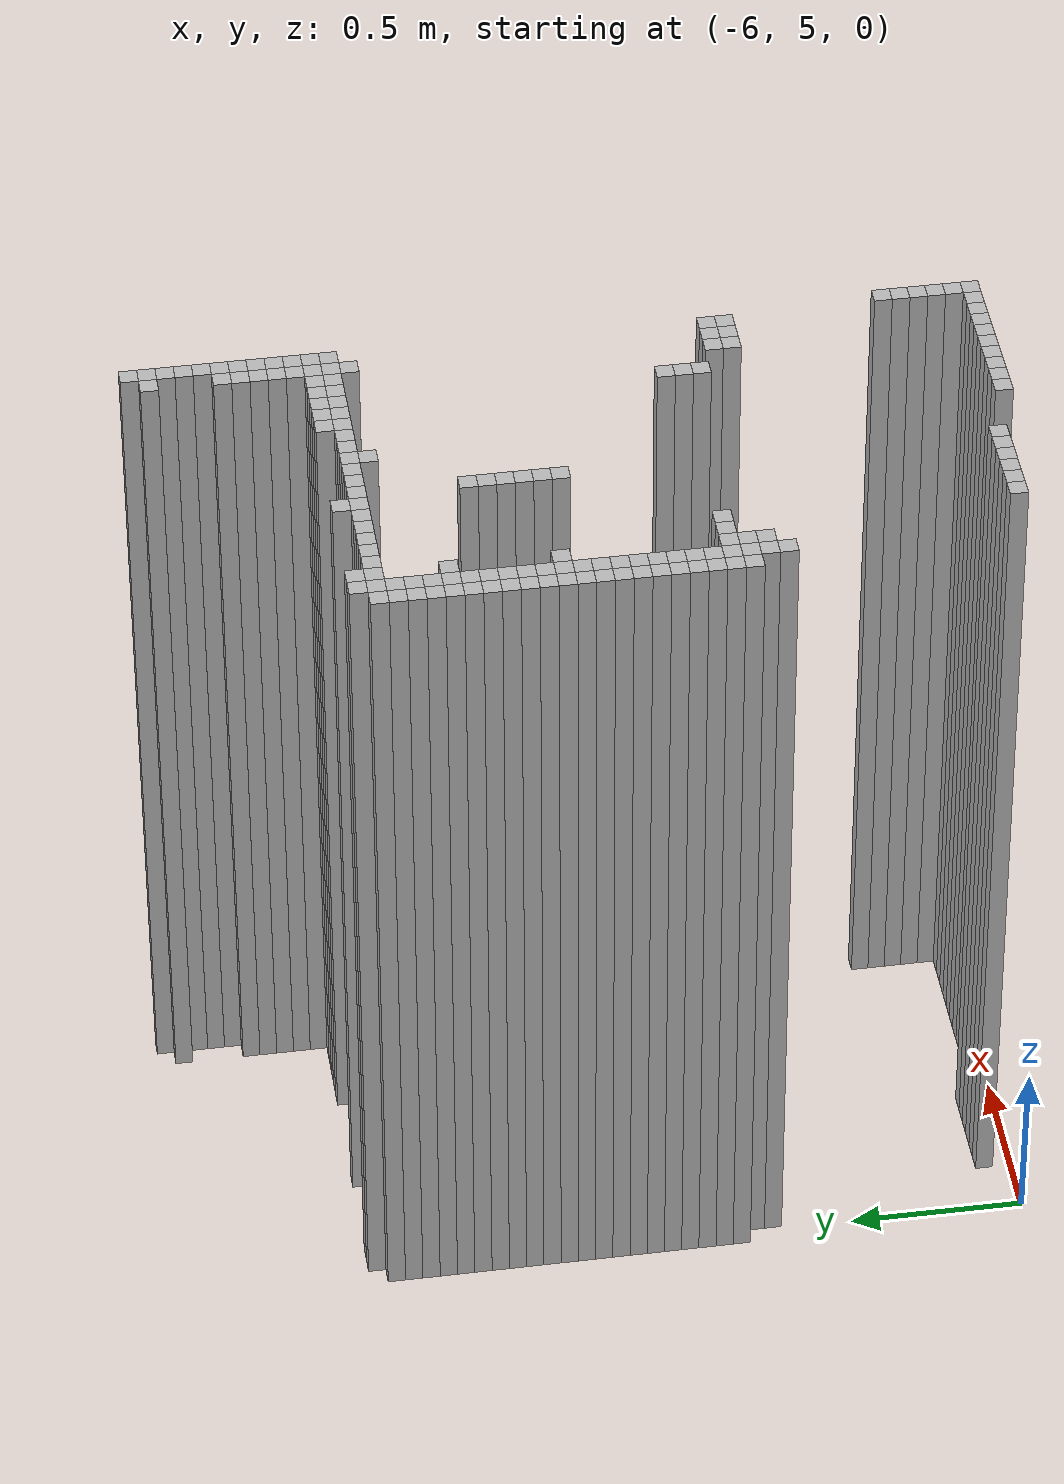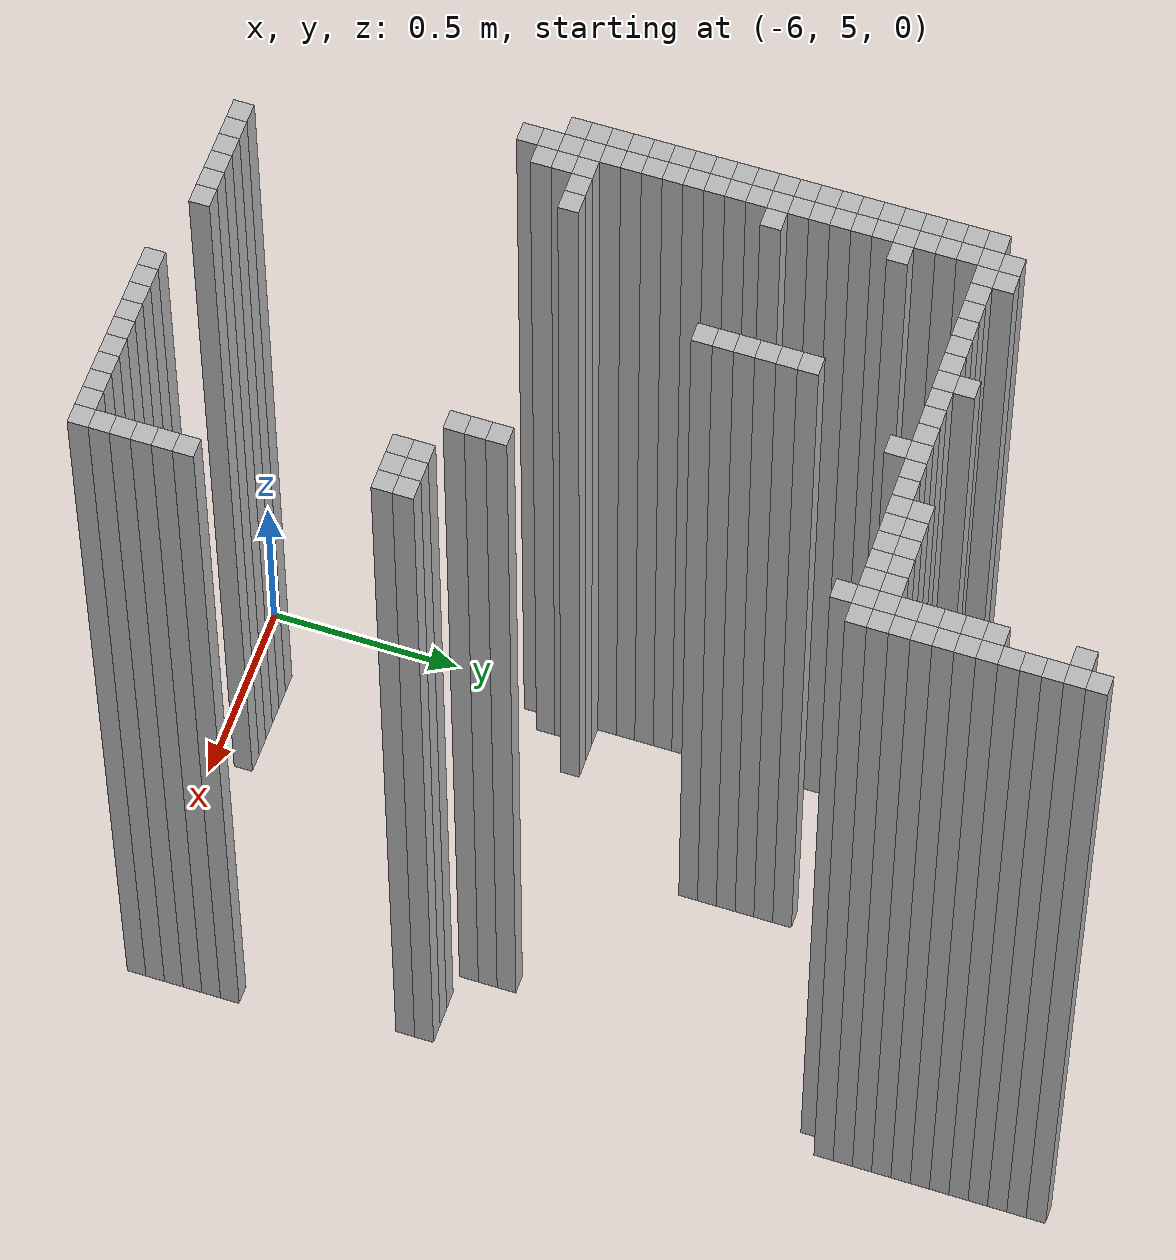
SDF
<sdf version="1.9">
 <world name="map_world">
  <model name="wall_124_6">
   <static>true</static>
   <pose>-4.961 7.380 1.250 0 0 0</pose>
   <link name="link">
    <collision name="collision"><geometry><box><size>0.050 0.050 2.500</size></box></geometry></collision>
    <visual name="visual"><geometry><box><size>0.050 0.050 2.500</size></box></geometry></visual>
   </link>
  </model>
  <model name="wall_123_7">
   <static>true</static>
   <pose>-5.011 7.330 1.250 0 0 0</pose>
   <link name="link">
    <collision name="collision"><geometry><box><size>0.050 0.050 2.500</size></box></geometry></collision>
    <visual name="visual"><geometry><box><size>0.050 0.050 2.500</size></box></geometry></visual>
   </link>
  </model>
  <model name="wall_124_7">
   <static>true</static>
   <pose>-4.961 7.330 1.250 0 0 0</pose>
   <link name="link">
    <collision name="collision"><geometry><box><size>0.050 0.050 2.500</size></box></geometry></collision>
    <visual name="visual"><geometry><box><size>0.050 0.050 2.500</size></box></geometry></visual>
   </link>
  </model>
  <model name="wall_124_8">
   <static>true</static>
   <pose>-4.961 7.280 1.250 0 0 0</pose>
   <link name="link">
    <collision name="collision"><geometry><box><size>0.050 0.050 2.500</size></box></geometry></collision>
    <visual name="visual"><geometry><box><size>0.050 0.050 2.500</size></box></geometry></visual>
   </link>
  </model>
  <model name="wall_124_9">
   <static>true</static>
   <pose>-4.961 7.230 1.250 0 0 0</pose>
   <link name="link">
    <collision name="collision"><geometry><box><size>0.050 0.050 2.500</size></box></geometry></collision>
    <visual name="visual"><geometry><box><size>0.050 0.050 2.500</size></box></geometry></visual>
   </link>
  </model>
  <model name="wall_124_10">
   <static>true</static>
   <pose>-4.961 7.180 1.250 0 0 0</pose>
   <link name="link">
    <collision name="collision"><geometry><box><size>0.050 0.050 2.500</size></box></geometry></collision>
    <visual name="visual"><geometry><box><size>0.050 0.050 2.500</size></box></geometry></visual>
   </link>
  </model>
  <model name="wall_123_11">
   <static>true</static>
   <pose>-5.011 7.130 1.250 0 0 0</pose>
   <link name="link">
    <collision name="collision"><geometry><box><size>0.050 0.050 2.500</size></box></geometry></collision>
    <visual name="visual"><geometry><box><size>0.050 0.050 2.500</size></box></geometry></visual>
   </link>
  </model>
  <model name="wall_124_11">
   <static>true</static>
   <pose>-4.961 7.130 1.250 0 0 0</pose>
   <link name="link">
    <collision name="collision"><geometry><box><size>0.050 0.050 2.500</size></box></geometry></collision>
    <visual name="visual"><geometry><box><size>0.050 0.050 2.500</size></box></geometry></visual>
   </link>
  </model>
  <model name="wall_123_12">
   <static>true</static>
   <pose>-5.011 7.080 1.250 0 0 0</pose>
   <link name="link">
    <collision name="collision"><geometry><box><size>0.050 0.050 2.500</size></box></geometry></collision>
    <visual name="visual"><geometry><box><size>0.050 0.050 2.500</size></box></geometry></visual>
   </link>
  </model>
  <model name="wall_124_12">
   <static>true</static>
   <pose>-4.961 7.080 1.250 0 0 0</pose>
   <link name="link">
    <collision name="collision"><geometry><box><size>0.050 0.050 2.500</size></box></geometry></collision>
    <visual name="visual"><geometry><box><size>0.050 0.050 2.500</size></box></geometry></visual>
   </link>
  </model>
  <model name="wall_123_13">
   <static>true</static>
   <pose>-5.011 7.030 1.250 0 0 0</pose>
   <link name="link">
    <collision name="collision"><geometry><box><size>0.050 0.050 2.500</size></box></geometry></collision>
    <visual name="visual"><geometry><box><size>0.050 0.050 2.500</size></box></geometry></visual>
   </link>
  </model>
  <model name="wall_124_13">
   <static>true</static>
   <pose>-4.961 7.030 1.250 0 0 0</pose>
   <link name="link">
    <collision name="collision"><geometry><box><size>0.050 0.050 2.500</size></box></geometry></collision>
    <visual name="visual"><geometry><box><size>0.050 0.050 2.500</size></box></geometry></visual>
   </link>
  </model>
  <model name="wall_123_14">
   <static>true</static>
   <pose>-5.011 6.980 1.250 0 0 0</pose>
   <link name="link">
    <collision name="collision"><geometry><box><size>0.050 0.050 2.500</size></box></geometry></collision>
    <visual name="visual"><geometry><box><size>0.050 0.050 2.500</size></box></geometry></visual>
   </link>
  </model>
  <model name="wall_124_14">
   <static>true</static>
   <pose>-4.961 6.980 1.250 0 0 0</pose>
   <link name="link">
    <collision name="collision"><geometry><box><size>0.050 0.050 2.500</size></box></geometry></collision>
    <visual name="visual"><geometry><box><size>0.050 0.050 2.500</size></box></geometry></visual>
   </link>
  </model>
  <model name="wall_123_15">
   <static>true</static>
   <pose>-5.011 6.930 1.250 0 0 0</pose>
   <link name="link">
    <collision name="collision"><geometry><box><size>0.050 0.050 2.500</size></box></geometry></collision>
    <visual name="visual"><geometry><box><size>0.050 0.050 2.500</size></box></geometry></visual>
   </link>
  </model>
  <model name="wall_124_15">
   <static>true</static>
   <pose>-4.961 6.930 1.250 0 0 0</pose>
   <link name="link">
    <collision name="collision"><geometry><box><size>0.050 0.050 2.500</size></box></geometry></collision>
    <visual name="visual"><geometry><box><size>0.050 0.050 2.500</size></box></geometry></visual>
   </link>
  </model>
  <model name="wall_104_16">
   <static>true</static>
   <pose>-5.961 6.880 1.250 0 0 0</pose>
   <link name="link">
    <collision name="collision"><geometry><box><size>0.050 0.050 2.500</size></box></geometry></collision>
    <visual name="visual"><geometry><box><size>0.050 0.050 2.500</size></box></geometry></visual>
   </link>
  </model>
  <model name="wall_105_16">
   <static>true</static>
   <pose>-5.911 6.880 1.250 0 0 0</pose>
   <link name="link">
    <collision name="collision"><geometry><box><size>0.050 0.050 2.500</size></box></geometry></collision>
    <visual name="visual"><geometry><box><size>0.050 0.050 2.500</size></box></geometry></visual>
   </link>
  </model>
  <model name="wall_111_16">
   <static>true</static>
   <pose>-5.611 6.880 1.250 0 0 0</pose>
   <link name="link">
    <collision name="collision"><geometry><box><size>0.050 0.050 2.500</size></box></geometry></collision>
    <visual name="visual"><geometry><box><size>0.050 0.050 2.500</size></box></geometry></visual>
   </link>
  </model>
  <model name="wall_118_16">
   <static>true</static>
   <pose>-5.261 6.880 1.250 0 0 0</pose>
   <link name="link">
    <collision name="collision"><geometry><box><size>0.050 0.050 2.500</size></box></geometry></collision>
    <visual name="visual"><geometry><box><size>0.050 0.050 2.500</size></box></geometry></visual>
   </link>
  </model>
  <model name="wall_119_16">
   <static>true</static>
   <pose>-5.211 6.880 1.250 0 0 0</pose>
   <link name="link">
    <collision name="collision"><geometry><box><size>0.050 0.050 2.500</size></box></geometry></collision>
    <visual name="visual"><geometry><box><size>0.050 0.050 2.500</size></box></geometry></visual>
   </link>
  </model>
  <model name="wall_120_16">
   <static>true</static>
   <pose>-5.161 6.880 1.250 0 0 0</pose>
   <link name="link">
    <collision name="collision"><geometry><box><size>0.050 0.050 2.500</size></box></geometry></collision>
    <visual name="visual"><geometry><box><size>0.050 0.050 2.500</size></box></geometry></visual>
   </link>
  </model>
  <model name="wall_121_16">
   <static>true</static>
   <pose>-5.111 6.880 1.250 0 0 0</pose>
   <link name="link">
    <collision name="collision"><geometry><box><size>0.050 0.050 2.500</size></box></geometry></collision>
    <visual name="visual"><geometry><box><size>0.050 0.050 2.500</size></box></geometry></visual>
   </link>
  </model>
  <model name="wall_122_16">
   <static>true</static>
   <pose>-5.061 6.880 1.250 0 0 0</pose>
   <link name="link">
    <collision name="collision"><geometry><box><size>0.050 0.050 2.500</size></box></geometry></collision>
    <visual name="visual"><geometry><box><size>0.050 0.050 2.500</size></box></geometry></visual>
   </link>
  </model>
  <model name="wall_123_16">
   <static>true</static>
   <pose>-5.011 6.880 1.250 0 0 0</pose>
   <link name="link">
    <collision name="collision"><geometry><box><size>0.050 0.050 2.500</size></box></geometry></collision>
    <visual name="visual"><geometry><box><size>0.050 0.050 2.500</size></box></geometry></visual>
   </link>
  </model>
  <model name="wall_124_16">
   <static>true</static>
   <pose>-4.961 6.880 1.250 0 0 0</pose>
   <link name="link">
    <collision name="collision"><geometry><box><size>0.050 0.050 2.500</size></box></geometry></collision>
    <visual name="visual"><geometry><box><size>0.050 0.050 2.500</size></box></geometry></visual>
   </link>
  </model>
  <model name="wall_103_17">
   <static>true</static>
   <pose>-6.011 6.830 1.250 0 0 0</pose>
   <link name="link">
    <collision name="collision"><geometry><box><size>0.050 0.050 2.500</size></box></geometry></collision>
    <visual name="visual"><geometry><box><size>0.050 0.050 2.500</size></box></geometry></visual>
   </link>
  </model>
  <model name="wall_104_17">
   <static>true</static>
   <pose>-5.961 6.830 1.250 0 0 0</pose>
   <link name="link">
    <collision name="collision"><geometry><box><size>0.050 0.050 2.500</size></box></geometry></collision>
    <visual name="visual"><geometry><box><size>0.050 0.050 2.500</size></box></geometry></visual>
   </link>
  </model>
  <model name="wall_105_17">
   <static>true</static>
   <pose>-5.911 6.830 1.250 0 0 0</pose>
   <link name="link">
    <collision name="collision"><geometry><box><size>0.050 0.050 2.500</size></box></geometry></collision>
    <visual name="visual"><geometry><box><size>0.050 0.050 2.500</size></box></geometry></visual>
   </link>
  </model>
  <model name="wall_106_17">
   <static>true</static>
   <pose>-5.861 6.830 1.250 0 0 0</pose>
   <link name="link">
    <collision name="collision"><geometry><box><size>0.050 0.050 2.500</size></box></geometry></collision>
    <visual name="visual"><geometry><box><size>0.050 0.050 2.500</size></box></geometry></visual>
   </link>
  </model>
  <model name="wall_107_17">
   <static>true</static>
   <pose>-5.811 6.830 1.250 0 0 0</pose>
   <link name="link">
    <collision name="collision"><geometry><box><size>0.050 0.050 2.500</size></box></geometry></collision>
    <visual name="visual"><geometry><box><size>0.050 0.050 2.500</size></box></geometry></visual>
   </link>
  </model>
  <model name="wall_108_17">
   <static>true</static>
   <pose>-5.761 6.830 1.250 0 0 0</pose>
   <link name="link">
    <collision name="collision"><geometry><box><size>0.050 0.050 2.500</size></box></geometry></collision>
    <visual name="visual"><geometry><box><size>0.050 0.050 2.500</size></box></geometry></visual>
   </link>
  </model>
  <model name="wall_109_17">
   <static>true</static>
   <pose>-5.711 6.830 1.250 0 0 0</pose>
   <link name="link">
    <collision name="collision"><geometry><box><size>0.050 0.050 2.500</size></box></geometry></collision>
    <visual name="visual"><geometry><box><size>0.050 0.050 2.500</size></box></geometry></visual>
   </link>
  </model>
  <model name="wall_110_17">
   <static>true</static>
   <pose>-5.661 6.830 1.250 0 0 0</pose>
   <link name="link">
    <collision name="collision"><geometry><box><size>0.050 0.050 2.500</size></box></geometry></collision>
    <visual name="visual"><geometry><box><size>0.050 0.050 2.500</size></box></geometry></visual>
   </link>
  </model>
  <model name="wall_111_17">
   <static>true</static>
   <pose>-5.611 6.830 1.250 0 0 0</pose>
   <link name="link">
    <collision name="collision"><geometry><box><size>0.050 0.050 2.500</size></box></geometry></collision>
    <visual name="visual"><geometry><box><size>0.050 0.050 2.500</size></box></geometry></visual>
   </link>
  </model>
  <model name="wall_112_17">
   <static>true</static>
   <pose>-5.561 6.830 1.250 0 0 0</pose>
   <link name="link">
    <collision name="collision"><geometry><box><size>0.050 0.050 2.500</size></box></geometry></collision>
    <visual name="visual"><geometry><box><size>0.050 0.050 2.500</size></box></geometry></visual>
   </link>
  </model>
  <model name="wall_113_17">
   <static>true</static>
   <pose>-5.511 6.830 1.250 0 0 0</pose>
   <link name="link">
    <collision name="collision"><geometry><box><size>0.050 0.050 2.500</size></box></geometry></collision>
    <visual name="visual"><geometry><box><size>0.050 0.050 2.500</size></box></geometry></visual>
   </link>
  </model>
  <model name="wall_114_17">
   <static>true</static>
   <pose>-5.461 6.830 1.250 0 0 0</pose>
   <link name="link">
    <collision name="collision"><geometry><box><size>0.050 0.050 2.500</size></box></geometry></collision>
    <visual name="visual"><geometry><box><size>0.050 0.050 2.500</size></box></geometry></visual>
   </link>
  </model>
  <model name="wall_115_17">
   <static>true</static>
   <pose>-5.411 6.830 1.250 0 0 0</pose>
   <link name="link">
    <collision name="collision"><geometry><box><size>0.050 0.050 2.500</size></box></geometry></collision>
    <visual name="visual"><geometry><box><size>0.050 0.050 2.500</size></box></geometry></visual>
   </link>
  </model>
  <model name="wall_116_17">
   <static>true</static>
   <pose>-5.361 6.830 1.250 0 0 0</pose>
   <link name="link">
    <collision name="collision"><geometry><box><size>0.050 0.050 2.500</size></box></geometry></collision>
    <visual name="visual"><geometry><box><size>0.050 0.050 2.500</size></box></geometry></visual>
   </link>
  </model>
  <model name="wall_117_17">
   <static>true</static>
   <pose>-5.311 6.830 1.250 0 0 0</pose>
   <link name="link">
    <collision name="collision"><geometry><box><size>0.050 0.050 2.500</size></box></geometry></collision>
    <visual name="visual"><geometry><box><size>0.050 0.050 2.500</size></box></geometry></visual>
   </link>
  </model>
  <model name="wall_118_17">
   <static>true</static>
   <pose>-5.261 6.830 1.250 0 0 0</pose>
   <link name="link">
    <collision name="collision"><geometry><box><size>0.050 0.050 2.500</size></box></geometry></collision>
    <visual name="visual"><geometry><box><size>0.050 0.050 2.500</size></box></geometry></visual>
   </link>
  </model>
  <model name="wall_119_17">
   <static>true</static>
   <pose>-5.211 6.830 1.250 0 0 0</pose>
   <link name="link">
    <collision name="collision"><geometry><box><size>0.050 0.050 2.500</size></box></geometry></collision>
    <visual name="visual"><geometry><box><size>0.050 0.050 2.500</size></box></geometry></visual>
   </link>
  </model>
  <model name="wall_120_17">
   <static>true</static>
   <pose>-5.161 6.830 1.250 0 0 0</pose>
   <link name="link">
    <collision name="collision"><geometry><box><size>0.050 0.050 2.500</size></box></geometry></collision>
    <visual name="visual"><geometry><box><size>0.050 0.050 2.500</size></box></geometry></visual>
   </link>
  </model>
  <model name="wall_121_17">
   <static>true</static>
   <pose>-5.111 6.830 1.250 0 0 0</pose>
   <link name="link">
    <collision name="collision"><geometry><box><size>0.050 0.050 2.500</size></box></geometry></collision>
    <visual name="visual"><geometry><box><size>0.050 0.050 2.500</size></box></geometry></visual>
   </link>
  </model>
  <model name="wall_122_17">
   <static>true</static>
   <pose>-5.061 6.830 1.250 0 0 0</pose>
   <link name="link">
    <collision name="collision"><geometry><box><size>0.050 0.050 2.500</size></box></geometry></collision>
    <visual name="visual"><geometry><box><size>0.050 0.050 2.500</size></box></geometry></visual>
   </link>
  </model>
  <model name="wall_123_17">
   <static>true</static>
   <pose>-5.011 6.830 1.250 0 0 0</pose>
   <link name="link">
    <collision name="collision"><geometry><box><size>0.050 0.050 2.500</size></box></geometry></collision>
    <visual name="visual"><geometry><box><size>0.050 0.050 2.500</size></box></geometry></visual>
   </link>
  </model>
  <model name="wall_124_17">
   <static>true</static>
   <pose>-4.961 6.830 1.250 0 0 0</pose>
   <link name="link">
    <collision name="collision"><geometry><box><size>0.050 0.050 2.500</size></box></geometry></collision>
    <visual name="visual"><geometry><box><size>0.050 0.050 2.500</size></box></geometry></visual>
   </link>
  </model>
  <model name="wall_103_18">
   <static>true</static>
   <pose>-6.011 6.780 1.250 0 0 0</pose>
   <link name="link">
    <collision name="collision"><geometry><box><size>0.050 0.050 2.500</size></box></geometry></collision>
    <visual name="visual"><geometry><box><size>0.050 0.050 2.500</size></box></geometry></visual>
   </link>
  </model>
  <model name="wall_104_18">
   <static>true</static>
   <pose>-5.961 6.780 1.250 0 0 0</pose>
   <link name="link">
    <collision name="collision"><geometry><box><size>0.050 0.050 2.500</size></box></geometry></collision>
    <visual name="visual"><geometry><box><size>0.050 0.050 2.500</size></box></geometry></visual>
   </link>
  </model>
  <model name="wall_115_18">
   <static>true</static>
   <pose>-5.411 6.780 1.250 0 0 0</pose>
   <link name="link">
    <collision name="collision"><geometry><box><size>0.050 0.050 2.500</size></box></geometry></collision>
    <visual name="visual"><geometry><box><size>0.050 0.050 2.500</size></box></geometry></visual>
   </link>
  </model>
  <model name="wall_123_18">
   <static>true</static>
   <pose>-5.011 6.780 1.250 0 0 0</pose>
   <link name="link">
    <collision name="collision"><geometry><box><size>0.050 0.050 2.500</size></box></geometry></collision>
    <visual name="visual"><geometry><box><size>0.050 0.050 2.500</size></box></geometry></visual>
   </link>
  </model>
  <model name="wall_103_19">
   <static>true</static>
   <pose>-6.011 6.730 1.250 0 0 0</pose>
   <link name="link">
    <collision name="collision"><geometry><box><size>0.050 0.050 2.500</size></box></geometry></collision>
    <visual name="visual"><geometry><box><size>0.050 0.050 2.500</size></box></geometry></visual>
   </link>
  </model>
  <model name="wall_104_19">
   <static>true</static>
   <pose>-5.961 6.730 1.250 0 0 0</pose>
   <link name="link">
    <collision name="collision"><geometry><box><size>0.050 0.050 2.500</size></box></geometry></collision>
    <visual name="visual"><geometry><box><size>0.050 0.050 2.500</size></box></geometry></visual>
   </link>
  </model>
  <model name="wall_103_20">
   <static>true</static>
   <pose>-6.011 6.680 1.250 0 0 0</pose>
   <link name="link">
    <collision name="collision"><geometry><box><size>0.050 0.050 2.500</size></box></geometry></collision>
    <visual name="visual"><geometry><box><size>0.050 0.050 2.500</size></box></geometry></visual>
   </link>
  </model>
  <model name="wall_104_20">
   <static>true</static>
   <pose>-5.961 6.680 1.250 0 0 0</pose>
   <link name="link">
    <collision name="collision"><geometry><box><size>0.050 0.050 2.500</size></box></geometry></collision>
    <visual name="visual"><geometry><box><size>0.050 0.050 2.500</size></box></geometry></visual>
   </link>
  </model>
  <model name="wall_103_21">
   <static>true</static>
   <pose>-6.011 6.630 1.250 0 0 0</pose>
   <link name="link">
    <collision name="collision"><geometry><box><size>0.050 0.050 2.500</size></box></geometry></collision>
    <visual name="visual"><geometry><box><size>0.050 0.050 2.500</size></box></geometry></visual>
   </link>
  </model>
  <model name="wall_104_21">
   <static>true</static>
   <pose>-5.961 6.630 1.250 0 0 0</pose>
   <link name="link">
    <collision name="collision"><geometry><box><size>0.050 0.050 2.500</size></box></geometry></collision>
    <visual name="visual"><geometry><box><size>0.050 0.050 2.500</size></box></geometry></visual>
   </link>
  </model>
  <model name="wall_105_21">
   <static>true</static>
   <pose>-5.911 6.630 1.250 0 0 0</pose>
   <link name="link">
    <collision name="collision"><geometry><box><size>0.050 0.050 2.500</size></box></geometry></collision>
    <visual name="visual"><geometry><box><size>0.050 0.050 2.500</size></box></geometry></visual>
   </link>
  </model>
  <model name="wall_103_22">
   <static>true</static>
   <pose>-6.011 6.580 1.250 0 0 0</pose>
   <link name="link">
    <collision name="collision"><geometry><box><size>0.050 0.050 2.500</size></box></geometry></collision>
    <visual name="visual"><geometry><box><size>0.050 0.050 2.500</size></box></geometry></visual>
   </link>
  </model>
  <model name="wall_104_22">
   <static>true</static>
   <pose>-5.961 6.580 1.250 0 0 0</pose>
   <link name="link">
    <collision name="collision"><geometry><box><size>0.050 0.050 2.500</size></box></geometry></collision>
    <visual name="visual"><geometry><box><size>0.050 0.050 2.500</size></box></geometry></visual>
   </link>
  </model>
  <model name="wall_103_23">
   <static>true</static>
   <pose>-6.011 6.530 1.250 0 0 0</pose>
   <link name="link">
    <collision name="collision"><geometry><box><size>0.050 0.050 2.500</size></box></geometry></collision>
    <visual name="visual"><geometry><box><size>0.050 0.050 2.500</size></box></geometry></visual>
   </link>
  </model>
  <model name="wall_104_23">
   <static>true</static>
   <pose>-5.961 6.530 1.250 0 0 0</pose>
   <link name="link">
    <collision name="collision"><geometry><box><size>0.050 0.050 2.500</size></box></geometry></collision>
    <visual name="visual"><geometry><box><size>0.050 0.050 2.500</size></box></geometry></visual>
   </link>
  </model>
  <model name="wall_112_23">
   <static>true</static>
   <pose>-5.561 6.530 1.250 0 0 0</pose>
   <link name="link">
    <collision name="collision"><geometry><box><size>0.050 0.050 2.500</size></box></geometry></collision>
    <visual name="visual"><geometry><box><size>0.050 0.050 2.500</size></box></geometry></visual>
   </link>
  </model>
  <model name="wall_103_24">
   <static>true</static>
   <pose>-6.011 6.480 1.250 0 0 0</pose>
   <link name="link">
    <collision name="collision"><geometry><box><size>0.050 0.050 2.500</size></box></geometry></collision>
    <visual name="visual"><geometry><box><size>0.050 0.050 2.500</size></box></geometry></visual>
   </link>
  </model>
  <model name="wall_104_24">
   <static>true</static>
   <pose>-5.961 6.480 1.250 0 0 0</pose>
   <link name="link">
    <collision name="collision"><geometry><box><size>0.050 0.050 2.500</size></box></geometry></collision>
    <visual name="visual"><geometry><box><size>0.050 0.050 2.500</size></box></geometry></visual>
   </link>
  </model>
  <model name="wall_112_24">
   <static>true</static>
   <pose>-5.561 6.480 1.250 0 0 0</pose>
   <link name="link">
    <collision name="collision"><geometry><box><size>0.050 0.050 2.500</size></box></geometry></collision>
    <visual name="visual"><geometry><box><size>0.050 0.050 2.500</size></box></geometry></visual>
   </link>
  </model>
  <model name="wall_103_25">
   <static>true</static>
   <pose>-6.011 6.430 1.250 0 0 0</pose>
   <link name="link">
    <collision name="collision"><geometry><box><size>0.050 0.050 2.500</size></box></geometry></collision>
    <visual name="visual"><geometry><box><size>0.050 0.050 2.500</size></box></geometry></visual>
   </link>
  </model>
  <model name="wall_104_25">
   <static>true</static>
   <pose>-5.961 6.430 1.250 0 0 0</pose>
   <link name="link">
    <collision name="collision"><geometry><box><size>0.050 0.050 2.500</size></box></geometry></collision>
    <visual name="visual"><geometry><box><size>0.050 0.050 2.500</size></box></geometry></visual>
   </link>
  </model>
  <model name="wall_112_25">
   <static>true</static>
   <pose>-5.561 6.430 1.250 0 0 0</pose>
   <link name="link">
    <collision name="collision"><geometry><box><size>0.050 0.050 2.500</size></box></geometry></collision>
    <visual name="visual"><geometry><box><size>0.050 0.050 2.500</size></box></geometry></visual>
   </link>
  </model>
  <model name="wall_103_26">
   <static>true</static>
   <pose>-6.011 6.380 1.250 0 0 0</pose>
   <link name="link">
    <collision name="collision"><geometry><box><size>0.050 0.050 2.500</size></box></geometry></collision>
    <visual name="visual"><geometry><box><size>0.050 0.050 2.500</size></box></geometry></visual>
   </link>
  </model>
  <model name="wall_104_26">
   <static>true</static>
   <pose>-5.961 6.380 1.250 0 0 0</pose>
   <link name="link">
    <collision name="collision"><geometry><box><size>0.050 0.050 2.500</size></box></geometry></collision>
    <visual name="visual"><geometry><box><size>0.050 0.050 2.500</size></box></geometry></visual>
   </link>
  </model>
  <model name="wall_112_26">
   <static>true</static>
   <pose>-5.561 6.380 1.250 0 0 0</pose>
   <link name="link">
    <collision name="collision"><geometry><box><size>0.050 0.050 2.500</size></box></geometry></collision>
    <visual name="visual"><geometry><box><size>0.050 0.050 2.500</size></box></geometry></visual>
   </link>
  </model>
  <model name="wall_103_27">
   <static>true</static>
   <pose>-6.011 6.330 1.250 0 0 0</pose>
   <link name="link">
    <collision name="collision"><geometry><box><size>0.050 0.050 2.500</size></box></geometry></collision>
    <visual name="visual"><geometry><box><size>0.050 0.050 2.500</size></box></geometry></visual>
   </link>
  </model>
  <model name="wall_104_27">
   <static>true</static>
   <pose>-5.961 6.330 1.250 0 0 0</pose>
   <link name="link">
    <collision name="collision"><geometry><box><size>0.050 0.050 2.500</size></box></geometry></collision>
    <visual name="visual"><geometry><box><size>0.050 0.050 2.500</size></box></geometry></visual>
   </link>
  </model>
  <model name="wall_105_27">
   <static>true</static>
   <pose>-5.911 6.330 1.250 0 0 0</pose>
   <link name="link">
    <collision name="collision"><geometry><box><size>0.050 0.050 2.500</size></box></geometry></collision>
    <visual name="visual"><geometry><box><size>0.050 0.050 2.500</size></box></geometry></visual>
   </link>
  </model>
  <model name="wall_112_27">
   <static>true</static>
   <pose>-5.561 6.330 1.250 0 0 0</pose>
   <link name="link">
    <collision name="collision"><geometry><box><size>0.050 0.050 2.500</size></box></geometry></collision>
    <visual name="visual"><geometry><box><size>0.050 0.050 2.500</size></box></geometry></visual>
   </link>
  </model>
  <model name="wall_103_28">
   <static>true</static>
   <pose>-6.011 6.280 1.250 0 0 0</pose>
   <link name="link">
    <collision name="collision"><geometry><box><size>0.050 0.050 2.500</size></box></geometry></collision>
    <visual name="visual"><geometry><box><size>0.050 0.050 2.500</size></box></geometry></visual>
   </link>
  </model>
  <model name="wall_104_28">
   <static>true</static>
   <pose>-5.961 6.280 1.250 0 0 0</pose>
   <link name="link">
    <collision name="collision"><geometry><box><size>0.050 0.050 2.500</size></box></geometry></collision>
    <visual name="visual"><geometry><box><size>0.050 0.050 2.500</size></box></geometry></visual>
   </link>
  </model>
  <model name="wall_112_28">
   <static>true</static>
   <pose>-5.561 6.280 1.250 0 0 0</pose>
   <link name="link">
    <collision name="collision"><geometry><box><size>0.050 0.050 2.500</size></box></geometry></collision>
    <visual name="visual"><geometry><box><size>0.050 0.050 2.500</size></box></geometry></visual>
   </link>
  </model>
  <model name="wall_103_29">
   <static>true</static>
   <pose>-6.011 6.230 1.250 0 0 0</pose>
   <link name="link">
    <collision name="collision"><geometry><box><size>0.050 0.050 2.500</size></box></geometry></collision>
    <visual name="visual"><geometry><box><size>0.050 0.050 2.500</size></box></geometry></visual>
   </link>
  </model>
  <model name="wall_104_29">
   <static>true</static>
   <pose>-5.961 6.230 1.250 0 0 0</pose>
   <link name="link">
    <collision name="collision"><geometry><box><size>0.050 0.050 2.500</size></box></geometry></collision>
    <visual name="visual"><geometry><box><size>0.050 0.050 2.500</size></box></geometry></visual>
   </link>
  </model>
  <model name="wall_103_30">
   <static>true</static>
   <pose>-6.011 6.180 1.250 0 0 0</pose>
   <link name="link">
    <collision name="collision"><geometry><box><size>0.050 0.050 2.500</size></box></geometry></collision>
    <visual name="visual"><geometry><box><size>0.050 0.050 2.500</size></box></geometry></visual>
   </link>
  </model>
  <model name="wall_104_30">
   <static>true</static>
   <pose>-5.961 6.180 1.250 0 0 0</pose>
   <link name="link">
    <collision name="collision"><geometry><box><size>0.050 0.050 2.500</size></box></geometry></collision>
    <visual name="visual"><geometry><box><size>0.050 0.050 2.500</size></box></geometry></visual>
   </link>
  </model>
  <model name="wall_103_31">
   <static>true</static>
   <pose>-6.011 6.130 1.250 0 0 0</pose>
   <link name="link">
    <collision name="collision"><geometry><box><size>0.050 0.050 2.500</size></box></geometry></collision>
    <visual name="visual"><geometry><box><size>0.050 0.050 2.500</size></box></geometry></visual>
   </link>
  </model>
  <model name="wall_104_31">
   <static>true</static>
   <pose>-5.961 6.130 1.250 0 0 0</pose>
   <link name="link">
    <collision name="collision"><geometry><box><size>0.050 0.050 2.500</size></box></geometry></collision>
    <visual name="visual"><geometry><box><size>0.050 0.050 2.500</size></box></geometry></visual>
   </link>
  </model>
  <model name="wall_103_32">
   <static>true</static>
   <pose>-6.011 6.080 1.250 0 0 0</pose>
   <link name="link">
    <collision name="collision"><geometry><box><size>0.050 0.050 2.500</size></box></geometry></collision>
    <visual name="visual"><geometry><box><size>0.050 0.050 2.500</size></box></geometry></visual>
   </link>
  </model>
  <model name="wall_104_32">
   <static>true</static>
   <pose>-5.961 6.080 1.250 0 0 0</pose>
   <link name="link">
    <collision name="collision"><geometry><box><size>0.050 0.050 2.500</size></box></geometry></collision>
    <visual name="visual"><geometry><box><size>0.050 0.050 2.500</size></box></geometry></visual>
   </link>
  </model>
  <model name="wall_103_33">
   <static>true</static>
   <pose>-6.011 6.030 1.250 0 0 0</pose>
   <link name="link">
    <collision name="collision"><geometry><box><size>0.050 0.050 2.500</size></box></geometry></collision>
    <visual name="visual"><geometry><box><size>0.050 0.050 2.500</size></box></geometry></visual>
   </link>
  </model>
  <model name="wall_104_33">
   <static>true</static>
   <pose>-5.961 6.030 1.250 0 0 0</pose>
   <link name="link">
    <collision name="collision"><geometry><box><size>0.050 0.050 2.500</size></box></geometry></collision>
    <visual name="visual"><geometry><box><size>0.050 0.050 2.500</size></box></geometry></visual>
   </link>
  </model>
  <model name="wall_103_34">
   <static>true</static>
   <pose>-6.011 5.980 1.250 0 0 0</pose>
   <link name="link">
    <collision name="collision"><geometry><box><size>0.050 0.050 2.500</size></box></geometry></collision>
    <visual name="visual"><geometry><box><size>0.050 0.050 2.500</size></box></geometry></visual>
   </link>
  </model>
  <model name="wall_104_34">
   <static>true</static>
   <pose>-5.961 5.980 1.250 0 0 0</pose>
   <link name="link">
    <collision name="collision"><geometry><box><size>0.050 0.050 2.500</size></box></geometry></collision>
    <visual name="visual"><geometry><box><size>0.050 0.050 2.500</size></box></geometry></visual>
   </link>
  </model>
  <model name="wall_103_35">
   <static>true</static>
   <pose>-6.011 5.930 1.250 0 0 0</pose>
   <link name="link">
    <collision name="collision"><geometry><box><size>0.050 0.050 2.500</size></box></geometry></collision>
    <visual name="visual"><geometry><box><size>0.050 0.050 2.500</size></box></geometry></visual>
   </link>
  </model>
  <model name="wall_104_35">
   <static>true</static>
   <pose>-5.961 5.930 1.250 0 0 0</pose>
   <link name="link">
    <collision name="collision"><geometry><box><size>0.050 0.050 2.500</size></box></geometry></collision>
    <visual name="visual"><geometry><box><size>0.050 0.050 2.500</size></box></geometry></visual>
   </link>
  </model>
  <model name="wall_120_35">
   <static>true</static>
   <pose>-5.161 5.930 1.250 0 0 0</pose>
   <link name="link">
    <collision name="collision"><geometry><box><size>0.050 0.050 2.500</size></box></geometry></collision>
    <visual name="visual"><geometry><box><size>0.050 0.050 2.500</size></box></geometry></visual>
   </link>
  </model>
  <model name="wall_103_36">
   <static>true</static>
   <pose>-6.011 5.880 1.250 0 0 0</pose>
   <link name="link">
    <collision name="collision"><geometry><box><size>0.050 0.050 2.500</size></box></geometry></collision>
    <visual name="visual"><geometry><box><size>0.050 0.050 2.500</size></box></geometry></visual>
   </link>
  </model>
  <model name="wall_104_36">
   <static>true</static>
   <pose>-5.961 5.880 1.250 0 0 0</pose>
   <link name="link">
    <collision name="collision"><geometry><box><size>0.050 0.050 2.500</size></box></geometry></collision>
    <visual name="visual"><geometry><box><size>0.050 0.050 2.500</size></box></geometry></visual>
   </link>
  </model>
  <model name="wall_105_36">
   <static>true</static>
   <pose>-5.911 5.880 1.250 0 0 0</pose>
   <link name="link">
    <collision name="collision"><geometry><box><size>0.050 0.050 2.500</size></box></geometry></collision>
    <visual name="visual"><geometry><box><size>0.050 0.050 2.500</size></box></geometry></visual>
   </link>
  </model>
  <model name="wall_106_36">
   <static>true</static>
   <pose>-5.861 5.880 1.250 0 0 0</pose>
   <link name="link">
    <collision name="collision"><geometry><box><size>0.050 0.050 2.500</size></box></geometry></collision>
    <visual name="visual"><geometry><box><size>0.050 0.050 2.500</size></box></geometry></visual>
   </link>
  </model>
  <model name="wall_107_36">
   <static>true</static>
   <pose>-5.811 5.880 1.250 0 0 0</pose>
   <link name="link">
    <collision name="collision"><geometry><box><size>0.050 0.050 2.500</size></box></geometry></collision>
    <visual name="visual"><geometry><box><size>0.050 0.050 2.500</size></box></geometry></visual>
   </link>
  </model>
  <model name="wall_120_36">
   <static>true</static>
   <pose>-5.161 5.880 1.250 0 0 0</pose>
   <link name="link">
    <collision name="collision"><geometry><box><size>0.050 0.050 2.500</size></box></geometry></collision>
    <visual name="visual"><geometry><box><size>0.050 0.050 2.500</size></box></geometry></visual>
   </link>
  </model>
  <model name="wall_103_37">
   <static>true</static>
   <pose>-6.011 5.830 1.250 0 0 0</pose>
   <link name="link">
    <collision name="collision"><geometry><box><size>0.050 0.050 2.500</size></box></geometry></collision>
    <visual name="visual"><geometry><box><size>0.050 0.050 2.500</size></box></geometry></visual>
   </link>
  </model>
  <model name="wall_104_37">
   <static>true</static>
   <pose>-5.961 5.830 1.250 0 0 0</pose>
   <link name="link">
    <collision name="collision"><geometry><box><size>0.050 0.050 2.500</size></box></geometry></collision>
    <visual name="visual"><geometry><box><size>0.050 0.050 2.500</size></box></geometry></visual>
   </link>
  </model>
  <model name="wall_105_37">
   <static>true</static>
   <pose>-5.911 5.830 1.250 0 0 0</pose>
   <link name="link">
    <collision name="collision"><geometry><box><size>0.050 0.050 2.500</size></box></geometry></collision>
    <visual name="visual"><geometry><box><size>0.050 0.050 2.500</size></box></geometry></visual>
   </link>
  </model>
  <model name="wall_120_37">
   <static>true</static>
   <pose>-5.161 5.830 1.250 0 0 0</pose>
   <link name="link">
    <collision name="collision"><geometry><box><size>0.050 0.050 2.500</size></box></geometry></collision>
    <visual name="visual"><geometry><box><size>0.050 0.050 2.500</size></box></geometry></visual>
   </link>
  </model>
  <model name="wall_104_38">
   <static>true</static>
   <pose>-5.961 5.780 1.250 0 0 0</pose>
   <link name="link">
    <collision name="collision"><geometry><box><size>0.050 0.050 2.500</size></box></geometry></collision>
    <visual name="visual"><geometry><box><size>0.050 0.050 2.500</size></box></geometry></visual>
   </link>
  </model>
  <model name="wall_105_38">
   <static>true</static>
   <pose>-5.911 5.780 1.250 0 0 0</pose>
   <link name="link">
    <collision name="collision"><geometry><box><size>0.050 0.050 2.500</size></box></geometry></collision>
    <visual name="visual"><geometry><box><size>0.050 0.050 2.500</size></box></geometry></visual>
   </link>
  </model>
  <model name="wall_122_38">
   <static>true</static>
   <pose>-5.061 5.780 1.250 0 0 0</pose>
   <link name="link">
    <collision name="collision"><geometry><box><size>0.050 0.050 2.500</size></box></geometry></collision>
    <visual name="visual"><geometry><box><size>0.050 0.050 2.500</size></box></geometry></visual>
   </link>
  </model>
  <model name="wall_123_38">
   <static>true</static>
   <pose>-5.011 5.780 1.250 0 0 0</pose>
   <link name="link">
    <collision name="collision"><geometry><box><size>0.050 0.050 2.500</size></box></geometry></collision>
    <visual name="visual"><geometry><box><size>0.050 0.050 2.500</size></box></geometry></visual>
   </link>
  </model>
  <model name="wall_124_38">
   <static>true</static>
   <pose>-4.961 5.780 1.250 0 0 0</pose>
   <link name="link">
    <collision name="collision"><geometry><box><size>0.050 0.050 2.500</size></box></geometry></collision>
    <visual name="visual"><geometry><box><size>0.050 0.050 2.500</size></box></geometry></visual>
   </link>
  </model>
  <model name="wall_104_39">
   <static>true</static>
   <pose>-5.961 5.730 1.250 0 0 0</pose>
   <link name="link">
    <collision name="collision"><geometry><box><size>0.050 0.050 2.500</size></box></geometry></collision>
    <visual name="visual"><geometry><box><size>0.050 0.050 2.500</size></box></geometry></visual>
   </link>
  </model>
  <model name="wall_122_39">
   <static>true</static>
   <pose>-5.061 5.730 1.250 0 0 0</pose>
   <link name="link">
    <collision name="collision"><geometry><box><size>0.050 0.050 2.500</size></box></geometry></collision>
    <visual name="visual"><geometry><box><size>0.050 0.050 2.500</size></box></geometry></visual>
   </link>
  </model>
  <model name="wall_123_39">
   <static>true</static>
   <pose>-5.011 5.730 1.250 0 0 0</pose>
   <link name="link">
    <collision name="collision"><geometry><box><size>0.050 0.050 2.500</size></box></geometry></collision>
    <visual name="visual"><geometry><box><size>0.050 0.050 2.500</size></box></geometry></visual>
   </link>
  </model>
  <model name="wall_124_39">
   <static>true</static>
   <pose>-4.961 5.730 1.250 0 0 0</pose>
   <link name="link">
    <collision name="collision"><geometry><box><size>0.050 0.050 2.500</size></box></geometry></collision>
    <visual name="visual"><geometry><box><size>0.050 0.050 2.500</size></box></geometry></visual>
   </link>
  </model>
  <model name="wall_125_48">
   <static>true</static>
   <pose>-4.911 5.280 1.250 0 0 0</pose>
   <link name="link">
    <collision name="collision"><geometry><box><size>0.050 0.050 2.500</size></box></geometry></collision>
    <visual name="visual"><geometry><box><size>0.050 0.050 2.500</size></box></geometry></visual>
   </link>
  </model>
  <model name="wall_125_49">
   <static>true</static>
   <pose>-4.911 5.230 1.250 0 0 0</pose>
   <link name="link">
    <collision name="collision"><geometry><box><size>0.050 0.050 2.500</size></box></geometry></collision>
    <visual name="visual"><geometry><box><size>0.050 0.050 2.500</size></box></geometry></visual>
   </link>
  </model>
  <model name="wall_125_50">
   <static>true</static>
   <pose>-4.911 5.180 1.250 0 0 0</pose>
   <link name="link">
    <collision name="collision"><geometry><box><size>0.050 0.050 2.500</size></box></geometry></collision>
    <visual name="visual"><geometry><box><size>0.050 0.050 2.500</size></box></geometry></visual>
   </link>
  </model>
  <model name="wall_125_51">
   <static>true</static>
   <pose>-4.911 5.130 1.250 0 0 0</pose>
   <link name="link">
    <collision name="collision"><geometry><box><size>0.050 0.050 2.500</size></box></geometry></collision>
    <visual name="visual"><geometry><box><size>0.050 0.050 2.500</size></box></geometry></visual>
   </link>
  </model>
  <model name="wall_107_52">
   <static>true</static>
   <pose>-5.811 5.080 1.250 0 0 0</pose>
   <link name="link">
    <collision name="collision"><geometry><box><size>0.050 0.050 2.500</size></box></geometry></collision>
    <visual name="visual"><geometry><box><size>0.050 0.050 2.500</size></box></geometry></visual>
   </link>
  </model>
  <model name="wall_108_52">
   <static>true</static>
   <pose>-5.761 5.080 1.250 0 0 0</pose>
   <link name="link">
    <collision name="collision"><geometry><box><size>0.050 0.050 2.500</size></box></geometry></collision>
    <visual name="visual"><geometry><box><size>0.050 0.050 2.500</size></box></geometry></visual>
   </link>
  </model>
  <model name="wall_109_52">
   <static>true</static>
   <pose>-5.711 5.080 1.250 0 0 0</pose>
   <link name="link">
    <collision name="collision"><geometry><box><size>0.050 0.050 2.500</size></box></geometry></collision>
    <visual name="visual"><geometry><box><size>0.050 0.050 2.500</size></box></geometry></visual>
   </link>
  </model>
  <model name="wall_110_52">
   <static>true</static>
   <pose>-5.661 5.080 1.250 0 0 0</pose>
   <link name="link">
    <collision name="collision"><geometry><box><size>0.050 0.050 2.500</size></box></geometry></collision>
    <visual name="visual"><geometry><box><size>0.050 0.050 2.500</size></box></geometry></visual>
   </link>
  </model>
  <model name="wall_111_52">
   <static>true</static>
   <pose>-5.611 5.080 1.250 0 0 0</pose>
   <link name="link">
    <collision name="collision"><geometry><box><size>0.050 0.050 2.500</size></box></geometry></collision>
    <visual name="visual"><geometry><box><size>0.050 0.050 2.500</size></box></geometry></visual>
   </link>
  </model>
  <model name="wall_112_52">
   <static>true</static>
   <pose>-5.561 5.080 1.250 0 0 0</pose>
   <link name="link">
    <collision name="collision"><geometry><box><size>0.050 0.050 2.500</size></box></geometry></collision>
    <visual name="visual"><geometry><box><size>0.050 0.050 2.500</size></box></geometry></visual>
   </link>
  </model>
  <model name="wall_125_52">
   <static>true</static>
   <pose>-4.911 5.080 1.250 0 0 0</pose>
   <link name="link">
    <collision name="collision"><geometry><box><size>0.050 0.050 2.500</size></box></geometry></collision>
    <visual name="visual"><geometry><box><size>0.050 0.050 2.500</size></box></geometry></visual>
   </link>
  </model>
  <model name="wall_116_53">
   <static>true</static>
   <pose>-5.361 5.030 1.250 0 0 0</pose>
   <link name="link">
    <collision name="collision"><geometry><box><size>0.050 0.050 2.500</size></box></geometry></collision>
    <visual name="visual"><geometry><box><size>0.050 0.050 2.500</size></box></geometry></visual>
   </link>
  </model>
  <model name="wall_117_53">
   <static>true</static>
   <pose>-5.311 5.030 1.250 0 0 0</pose>
   <link name="link">
    <collision name="collision"><geometry><box><size>0.050 0.050 2.500</size></box></geometry></collision>
    <visual name="visual"><geometry><box><size>0.050 0.050 2.500</size></box></geometry></visual>
   </link>
  </model>
  <model name="wall_118_53">
   <static>true</static>
   <pose>-5.261 5.030 1.250 0 0 0</pose>
   <link name="link">
    <collision name="collision"><geometry><box><size>0.050 0.050 2.500</size></box></geometry></collision>
    <visual name="visual"><geometry><box><size>0.050 0.050 2.500</size></box></geometry></visual>
   </link>
  </model>
  <model name="wall_119_53">
   <static>true</static>
   <pose>-5.211 5.030 1.250 0 0 0</pose>
   <link name="link">
    <collision name="collision"><geometry><box><size>0.050 0.050 2.500</size></box></geometry></collision>
    <visual name="visual"><geometry><box><size>0.050 0.050 2.500</size></box></geometry></visual>
   </link>
  </model>
  <model name="wall_120_53">
   <static>true</static>
   <pose>-5.161 5.030 1.250 0 0 0</pose>
   <link name="link">
    <collision name="collision"><geometry><box><size>0.050 0.050 2.500</size></box></geometry></collision>
    <visual name="visual"><geometry><box><size>0.050 0.050 2.500</size></box></geometry></visual>
   </link>
  </model>
  <model name="wall_121_53">
   <static>true</static>
   <pose>-5.111 5.030 1.250 0 0 0</pose>
   <link name="link">
    <collision name="collision"><geometry><box><size>0.050 0.050 2.500</size></box></geometry></collision>
    <visual name="visual"><geometry><box><size>0.050 0.050 2.500</size></box></geometry></visual>
   </link>
  </model>
  <model name="wall_122_53">
   <static>true</static>
   <pose>-5.061 5.030 1.250 0 0 0</pose>
   <link name="link">
    <collision name="collision"><geometry><box><size>0.050 0.050 2.500</size></box></geometry></collision>
    <visual name="visual"><geometry><box><size>0.050 0.050 2.500</size></box></geometry></visual>
   </link>
  </model>
  <model name="wall_123_53">
   <static>true</static>
   <pose>-5.011 5.030 1.250 0 0 0</pose>
   <link name="link">
    <collision name="collision"><geometry><box><size>0.050 0.050 2.500</size></box></geometry></collision>
    <visual name="visual"><geometry><box><size>0.050 0.050 2.500</size></box></geometry></visual>
   </link>
  </model>
  <model name="wall_124_53">
   <static>true</static>
   <pose>-4.961 5.030 1.250 0 0 0</pose>
   <link name="link">
    <collision name="collision"><geometry><box><size>0.050 0.050 2.500</size></box></geometry></collision>
    <visual name="visual"><geometry><box><size>0.050 0.050 2.500</size></box></geometry></visual>
   </link>
  </model>
  <model name="wall_125_53">
   <static>true</static>
   <pose>-4.911 5.030 1.250 0 0 0</pose>
   <link name="link">
    <collision name="collision"><geometry><box><size>0.050 0.050 2.500</size></box></geometry></collision>
    <visual name="visual"><geometry><box><size>0.050 0.050 2.500</size></box></geometry></visual>
   </link>
  </model>
 </world>
</sdf>
